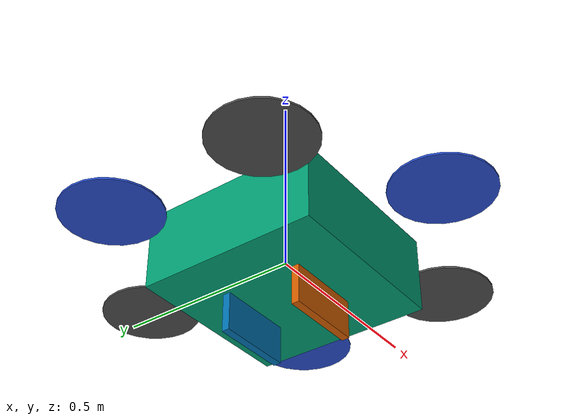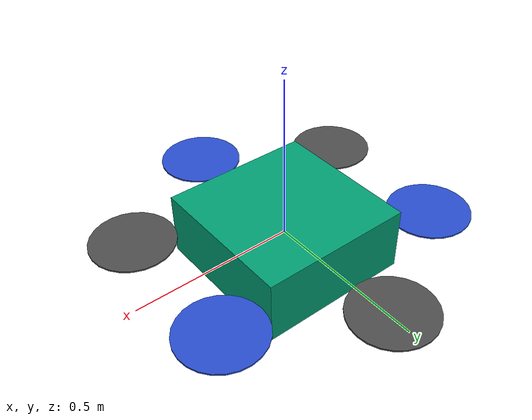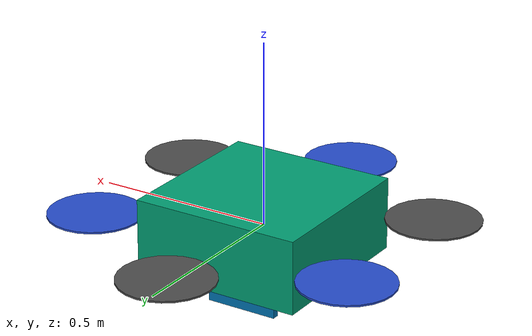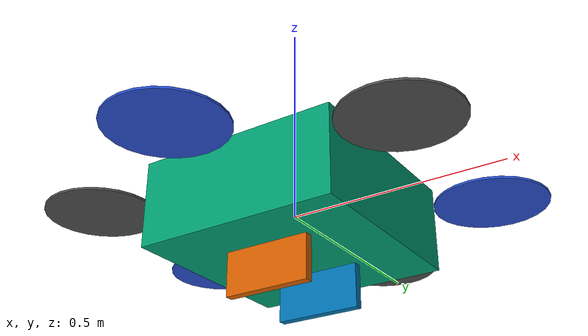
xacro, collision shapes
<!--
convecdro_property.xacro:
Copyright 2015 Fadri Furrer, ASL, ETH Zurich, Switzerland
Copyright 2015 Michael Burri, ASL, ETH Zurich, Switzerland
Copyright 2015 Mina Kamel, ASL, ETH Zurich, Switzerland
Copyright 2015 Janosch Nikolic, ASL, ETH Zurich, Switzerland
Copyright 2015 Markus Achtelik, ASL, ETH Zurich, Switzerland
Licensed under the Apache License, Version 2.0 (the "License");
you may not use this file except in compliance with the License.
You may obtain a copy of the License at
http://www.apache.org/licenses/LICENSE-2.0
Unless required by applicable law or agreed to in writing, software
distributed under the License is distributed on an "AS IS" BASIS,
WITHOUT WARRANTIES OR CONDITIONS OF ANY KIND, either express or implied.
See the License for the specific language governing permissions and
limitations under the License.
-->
<?xml version="1.0"?>

<robot name="convecdro" xmlns:xacro="http://ros.org/wiki/xacro">

  <!-- Included Properties -->
  <xacro:include filename="/home/soren/master_thesis/src/asv_wave_sim/asv_wave_sim_gazebo/models/convecdro/convecdro_property.xacro" />

  <!-- Included Mcros -->
  <xacro:include filename="/home/soren/master_thesis/src/asv_wave_sim/asv_wave_sim_gazebo/models/convecdro/convecdro_macro.xacro" />

<xacro:arg name='mavlink_addr' default='INADDR_ANY' />
<xacro:arg name='mavlink_udp_port' default='14560' />
<xacro:arg name='mavlink_tcp_port' default='4560' />
<xacro:arg name='serial_enabled' default='false' />
<xacro:arg name='serial_device' default='/dev/ttyACM0' />
<xacro:arg name='baudrate' default='921600' />
<xacro:arg name='qgc_addr' default='INADDR_ANY' />
<xacro:arg name='qgc_udp_port' default='14550' />
<xacro:arg name='sdk_addr' default='INADDR_ANY' />
<xacro:arg name='sdk_udp_port' default='14540' />
<xacro:arg name='hil_mode' default='0' />
<xacro:arg name='hil_state_level' default='0' />
<xacro:arg name='vehicle_is_tailsitter' default='0' />
<xacro:arg name='send_vision_estimation' default='1' />
<xacro:arg name='send_odometry' default='0' />
<xacro:arg name='enable_lockstep' default='0' />
<xacro:arg name='use_tcp' default='1' />

 <!-- Instantiate gps plugin. -->

  <!-- Instantiate magnetometer plugin. -->
  <xacro:magnetometer_plugin_macro
    namespace="${namespace}"
    pub_rate="20"
    noise_density="0.0004"
    random_walk="0.0000064"
    bias_correlation_time="600"
    mag_topic="/mag"
    >
  </xacro:magnetometer_plugin_macro>

  <!-- Instantiate barometer plugin. -->
  <xacro:barometer_plugin_macro
    namespace="${namespace}"
    pub_rate="10"
    baro_topic="/baro"
    >
  </xacro:barometer_plugin_macro>

<xacro:imu_plugin_macro
    namespace="${namespace}"
    imu_suffix=""
    parent_link="base_link"
    imu_topic="/imu"
    mass_imu_sensor="0.015"
    gyroscope_noise_density="0.0003394"
    gyroscopoe_random_walk="0.000038785"
    gyroscope_bias_correlation_time="1000.0"
    gyroscope_turn_on_bias_sigma="0.0087"
    accelerometer_noise_density="0.004"
    accelerometer_random_walk="0.006"
    accelerometer_bias_correlation_time="300.0"
    accelerometer_turn_on_bias_sigma="0.1960"
  >
    <inertia ixx="0.00001" ixy="0.0" ixz="0.0" iyy="0.00001" iyz="0.0" izz="0.00001" />
    <origin xyz="0 0 0" rpy="0 0 0" />
  </xacro:imu_plugin_macro>

  <!-- Instantiate mavlink telemetry interface. -->
  <xacro:mavlink_interface_macro
    namespace="${namespace}"
    imu_sub_topic="/imu"
    gps_sub_topic="/gps"
    mag_sub_topic="/mag"
    baro_sub_topic="/baro"
    mavlink_addr="INADDR_ANY"
    mavlink_udp_port="14560"
    mavlink_tcp_port ="4560"
    serial_enabled ="false"
    serial_device = "/dev/ttyACM0"
    baudrate = "921600"
    qgc_addr = "INADDR_ANY"
    qgc_udp_port ="14550"
    sdk_addr="INADDR_ANY"
    sdk_udp_port="14540"
    hil_mode="0"
    hil_state_level="0"
    vehicle_is_tailsitter="0"
    send_vision_estimation="1"
    send_odometry="0"
    enable_lockstep="0"
    use_tcp="1"
    >
  </xacro:mavlink_interface_macro>

  <!-- Instantiate multirotor_base_macro once -->
  <xacro:multirotor_base_macro
    robot_namespace="${namespace}"
    mass="${chassis_mass}"
    body_width="${chassis_width}"
    body_height="${chassis_height}"
    mesh_file="${chassis_mesh_file}"
    mesh_scale="${chassis_mesh_scale}"
    color="${color}"
    >
    <xacro:insert_block name="chassis_inertia" />
  </xacro:multirotor_base_macro>

  <!-- Instantiate hood macro once -->
  <xacro:convecdro_hood_macro
    robot_namespace="${namespace}"
    parent="base_link"
    mass="${hood_mass}"
    body_width="${hood_width}"
    body_height="${hood_height}"
    mesh_file="${hood_mesh_file}"
    mesh_scale="${hood_mesh_scale}"
    >
    <origin xyz="${hood_x} ${hood_y} ${hood_offset}" rpy="0 0 0" />
    <xacro:insert_block name="hood_inertia" />
  </xacro:convecdro_hood_macro>

  <!-- Instantiate left leg -->
  <xacro:convecdro_leg_macro
    robot_namespace="${namespace}"
    leg="left"
    parent="base_link"
    mass="${leg_mass}"
    body_width="${leg_width}"
    body_length="${leg_length}"
    body_height="${leg_height}"
    mesh_file="${leg_left_mesh_file}"
    mesh_scale="${leg_mesh_scale}"
    >
    <origin xyz="${leg_offset_x} ${leg_offset_y} ${leg_offset_z}" rpy="0 0 0" />
    <xacro:insert_block name="leg_inertia" />
  </xacro:convecdro_leg_macro>

  <!-- Instantiate right leg -->
  <xacro:convecdro_leg_macro
    robot_namespace="${namespace}"
    leg="right"
    parent="base_link"
    mass="${leg_mass}"
    body_width="${leg_width}"
    body_length="${leg_length}"
    body_height="${leg_height}"
    mesh_file="${leg_right_mesh_file}"
    mesh_scale="${leg_mesh_scale}"
    >
    <origin xyz="${leg_offset_x} -${leg_offset_y} ${leg_offset_z}" rpy="0 0 0" />
    <xacro:insert_block name="leg_inertia" />
  </xacro:convecdro_leg_macro>

  <!-- Rotor 0 (CW) -->
  <xacro:vertical_rotor
    robot_namespace="${namespace}"
    suffix="rotor_0"
    direction="cw"
    motor_constant="${motor_constant}"
    moment_constant="${moment_constant}"
    parent="base_link"
    rotor_mass="${rotor_mass}"
    radius_rotor="${radius_rotor}"
    time_constant_up="${time_constant_up}"
    time_constant_down="${time_constant_down}"
    max_rot_velocity="${max_rot_velocity}"
    motor_number="0"
    rotor_drag_coefficient="${rotor_drag_coefficient}"
    rolling_moment_coefficient="${rolling_moment_coefficient}"
    mesh="prop"
    mesh_scale="${mesh_scale_prop}"
    color="Blue">
    <origin xyz="${rotor0_x} ${rotor0_y} ${rotor_offset_top}" rpy="0 0 0" />
    <xacro:insert_block name="rotor_inertia" />
  </xacro:vertical_rotor>

  <!-- Rotor 1 (CCW) -->
  <xacro:vertical_rotor
    robot_namespace="${namespace}"
    suffix="rotor_1"
    direction="ccw"
    motor_constant="${motor_constant}"
    moment_constant="${moment_constant}"
    parent="base_link"
    rotor_mass="${rotor_mass}"
    radius_rotor="${radius_rotor}"
    time_constant_up="${time_constant_up}"
    time_constant_down="${time_constant_down}"
    max_rot_velocity="${max_rot_velocity}"
    motor_number="1"
    rotor_drag_coefficient="${rotor_drag_coefficient}"
    rolling_moment_coefficient="${rolling_moment_coefficient}"
    mesh="prop"
    mesh_scale="${mesh_scale_prop}"
    color="DarkGrey">
    <origin xyz="${rotor1_x} ${rotor1_y} ${rotor_offset_top}" rpy="0 0 0" />
    <xacro:insert_block name="rotor_inertia" />
  </xacro:vertical_rotor>

  <!-- Rotor 2 (CW) -->
  <xacro:vertical_rotor robot_namespace="${namespace}"
    suffix="rotor_2"
    direction="cw"
    motor_constant="${motor_constant}"
    moment_constant="${moment_constant}"
    parent="base_link"
    rotor_mass="${rotor_mass}"
    radius_rotor="${radius_rotor}"
    time_constant_up="${time_constant_up}"
    time_constant_down="${time_constant_down}"
    max_rot_velocity="${max_rot_velocity}"
    motor_number="2"
    rotor_drag_coefficient="${rotor_drag_coefficient}"
    rolling_moment_coefficient="${rolling_moment_coefficient}"
    mesh="prop"
    mesh_scale="${mesh_scale_prop}"
    color="Blue">
    <origin xyz="${rotor2_x} ${rotor2_y} ${rotor_offset_top}" rpy="0 0 0" />
    <xacro:insert_block name="rotor_inertia" />
  </xacro:vertical_rotor>

  <!-- Rotor 3 (CCW) -->
  <xacro:vertical_rotor robot_namespace="${namespace}"
    suffix="rotor_3"
    direction="ccw"
    motor_constant="${motor_constant}"
    moment_constant="${moment_constant}"
    parent="base_link"
    rotor_mass="${rotor_mass}"
    radius_rotor="${radius_rotor}"
    time_constant_up="${time_constant_up}"
    time_constant_down="${time_constant_down}"
    max_rot_velocity="${max_rot_velocity}"
    motor_number="3"
    rotor_drag_coefficient="${rotor_drag_coefficient}"
    rolling_moment_coefficient="${rolling_moment_coefficient}"
    mesh="prop"
    mesh_scale="${mesh_scale_prop}"
    color="DarkGrey">
    <origin xyz="${rotor3_x} ${rotor3_y} ${rotor_offset_top}" rpy="0 0 0" />
    <xacro:insert_block name="rotor_inertia" />
  </xacro:vertical_rotor>

  <!-- Rotor 4 (CCW) -->
  <xacro:vertical_rotor robot_namespace="${namespace}"
    suffix="rotor_4"
    direction="ccw"
    motor_constant="${motor_constant}"
    moment_constant="${moment_constant}"
    parent="base_link"
    rotor_mass="${rotor_mass}"
    radius_rotor="${radius_rotor}"
    time_constant_up="${time_constant_up}"
    time_constant_down="${time_constant_down}"
    max_rot_velocity="${max_rot_velocity}"
    motor_number="4"
    rotor_drag_coefficient="${rotor_drag_coefficient}"
    rolling_moment_coefficient="${rolling_moment_coefficient}"
    mesh="prop"
    mesh_scale="${mesh_scale_prop}"
    color="DarkGrey">
    <origin xyz="${rotor4_x} ${rotor4_y} ${rotor_offset_top}" rpy="0 0 0" />
    <xacro:insert_block name="rotor_inertia" />
  </xacro:vertical_rotor>

  <!-- Rotor 5 (CW) -->
  <xacro:vertical_rotor robot_namespace="${namespace}"
    suffix="rotor_5"
    direction="cw"
    motor_constant="${motor_constant}"
    moment_constant="${moment_constant}"
    parent="base_link"
    rotor_mass="${rotor_mass}"
    radius_rotor="${radius_rotor}"
    time_constant_up="${time_constant_up}"
    time_constant_down="${time_constant_down}"
    max_rot_velocity="${max_rot_velocity}"
    motor_number="5"
    rotor_drag_coefficient="${rotor_drag_coefficient}"
    rolling_moment_coefficient="${rolling_moment_coefficient}"
    mesh="prop"
    mesh_scale="${mesh_scale_prop}"
    color="Blue">
    <origin xyz="${rotor5_x} ${rotor5_y} ${rotor_offset_top}" rpy="0 0 0" />
    <xacro:insert_block name="rotor_inertia" />
  </xacro:vertical_rotor>

</robot>

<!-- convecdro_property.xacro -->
<robot xmlns:xacro="http://ros.org/wiki/xacro">
  <!-- Properties -->
  <xacro:property name="namespace" value="" />
  <xacro:property name="rotor_velocity_slowdown_sim" value="10" />

  <!-- ConVecDro chassis -->
  <xacro:property name="chassis_mesh_file" value="chassis.stl" />
  <xacro:property name="chassis_mesh_scale" value="1 1 1"/>
  <xacro:property name="chassis_mass" value="1.5" /> <!-- [kg] -->
  <xacro:property name="chassis_width" value="0.47" />
  <xacro:property name="chassis_height" value="0.20" />

  <xacro:property name="chassis_inertia">
    <inertia
    ixx="${1/12 * chassis_mass * (chassis_height * chassis_height + chassis_width * chassis_width)}"
    iyy="${1/12 * chassis_mass * (chassis_height * chassis_height + chassis_width * chassis_width)}"
    izz="${1/12 * chassis_mass * (chassis_width * chassis_width + chassis_width * chassis_width)}"
    ixy="0.0" ixz="0.0" iyz="0.0" /> <!-- [kg.m^2] [kg.m^2] [kg.m^2] [kg.m^2] [kg.m^2] [kg.m^2] -->
  </xacro:property>

  <!-- ConVecDro hood -->
  <xacro:property name="hood_mesh_file" value="hood.dae" />
  <xacro:property name="hood_mesh_scale" value="1.1 1.1 1.1"/>
  <xacro:property name="hood_mass" value="0.01" /> <!-- [kg] -->
  <xacro:property name="hood_width" value="0.25" />
  <xacro:property name="hood_length" value="0.25" />
  <xacro:property name="hood_height" value="0.02" />

  <xacro:property name="hood_x" value="0.0" />
  <xacro:property name="hood_y" value="0.0" />
  <xacro:property name="hood_offset" value="0.032" />

  <xacro:property name="hood_inertia">
    <inertia
    ixx="${1/12 * hood_mass * (hood_height * hood_height + hood_length * hood_length)}"
    iyy="${1/12 * hood_mass * (hood_width * hood_width + hood_length * hood_length)}"
    izz="${1/12 * hood_mass * (hood_width * hood_width + hood_height * hood_height)}"
    ixy="0.0" ixz="0.0" iyz="0.0" /> <!-- [kg.m^2] [kg.m^2] [kg.m^2] [kg.m^2] [kg.m^2] [kg.m^2] -->
  </xacro:property>

  <!-- ConVecDro left -->
  <xacro:property name="leg_mesh_scale" value="1 1 1"/>
  <xacro:property name="leg_mass" value="0.20" /> <!-- [kg] -->
  <xacro:property name="leg_width" value="0.20" />
  <xacro:property name="leg_length" value="0.02" />
  <xacro:property name="leg_height" value="0.20" />
  <xacro:property name="leg_offset_z" value="-${chassis_height/2}" />
  <xacro:property name="leg_offset_x" value="0.0" />
  <xacro:property name="leg_offset_y" value="0.1" />

  <xacro:property name="leg_left_mesh_file" value="leg1_remeshed_v3.stl" />
  <xacro:property name="leg_right_mesh_file" value="leg2_remeshed_v3.stl" />

  <xacro:property name="leg_inertia">
    <inertia
    ixx="${1/12 * leg_mass * (leg_height * leg_height + leg_length * leg_length)}"
    iyy="${1/12 * leg_mass * (leg_width * leg_width + leg_length * leg_length)}"
    izz="${1/12 * leg_mass * (leg_width * leg_width + leg_height * leg_height)}"
    ixy="0.0" ixz="0.0" iyz="0.0" /> <!-- [kg.m^2] [kg.m^2] [kg.m^2] [kg.m^2] [kg.m^2] [kg.m^2] -->
  </xacro:property>

  <!-- Rotor params -->
  <xacro:property name="rotor_mass" value="0.005" /> <!-- [kg] -->
  <xacro:property name="mesh_scale_prop" value="1 1 1"/>
  <xacro:property name="arm_length" value="0.44" />

  <xacro:property name="cos30" value="0.866025403784" />
  <xacro:property name="sin30" value="0.5" />

  <xacro:property name="cos90" value="0" />
  <xacro:property name="sin90" value="1" />

  <xacro:property name="cos150" value="-0.866025403784" />
  <xacro:property name="sin150" value="0.5" />

  <xacro:property name="cos210" value="-0.866025403784" />
  <xacro:property name="sin210" value="-0.5" />

  <xacro:property name="cos270" value="0" />
  <xacro:property name="sin270" value="-1" />

  <xacro:property name="cos330" value="0.866025403784" />
  <xacro:property name="sin330" value="-0.5" />

  <xacro:property name="rotor0_x" value="${cos270 * arm_length}" />
  <xacro:property name="rotor0_y" value="${sin270 * arm_length}" />

  <xacro:property name="rotor1_x" value="${cos90 * arm_length}" />
  <xacro:property name="rotor1_y" value="${sin90 * arm_length}" />

  <xacro:property name="rotor2_x" value="${cos30 * arm_length}" />
  <xacro:property name="rotor2_y" value="${sin30 * arm_length}" />

  <xacro:property name="rotor3_x" value="${cos210 * arm_length}" />
  <xacro:property name="rotor3_y" value="${sin210 * arm_length}" />

  <xacro:property name="rotor4_x" value="${cos330 * arm_length}" />
  <xacro:property name="rotor4_y" value="${sin330 * arm_length}" />

  <xacro:property name="rotor5_x" value="${cos150 * arm_length}" />
  <xacro:property name="rotor5_y" value="${sin150 * arm_length}" />

  <xacro:property name="radius_rotor" value="0.128" />
  <xacro:property name="rotor_offset_top" value="0.023" />

  <xacro:property name="motor_constant" value="8.54858e-06" /> <!-- [kg.m/s^2] -->
  <xacro:property name="moment_constant" value="0.06" />
  <xacro:property name="time_constant_up" value="0.0125" />
  <xacro:property name="time_constant_down" value="0.025" />
  <xacro:property name="max_rot_velocity" value="1100" /> <!-- [rad/s] -->
  <xacro:property name="sqrt2" value="1.4142135623730951" />
  <xacro:property name="rotor_drag_coefficient" value="8.06428e-04" />
  <xacro:property name="rolling_moment_coefficient" value="0.000001" />
  <xacro:property name="color" value="DarkGrey" />

  <!-- inertia of a single rotor, assuming it is a cuboid. Height=3mm, width=15mm -->
  <xacro:property name="rotor_inertia">
    <inertia
    ixx="${1/12 * rotor_mass * (0.015 * 0.015 + 0.003 * 0.003) * rotor_velocity_slowdown_sim}"
    iyy="${1/12 * rotor_mass * (4 * radius_rotor * radius_rotor + 0.003 * 0.003) * rotor_velocity_slowdown_sim}"
    izz="${1/12 * rotor_mass * (4 * radius_rotor * radius_rotor + 0.015 * 0.015) * rotor_velocity_slowdown_sim}"
    ixy="0.0" ixz="0.0"  iyz="0.0" /> <!-- [kg.m^2] [kg.m^2] [kg.m^2] [kg.m^2] [kg.m^2] [kg.m^2] -->
  </xacro:property>

</robot>

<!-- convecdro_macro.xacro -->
<robot xmlns:xacro="http://ros.org/wiki/xacro">
  <!-- Macro to add logging to a bag file. -->
  <!-- Main multirotor link -->
  <xacro:macro name="multirotor_base_macro"
    params="robot_namespace mass body_width body_height mesh_file mesh_scale color *inertia">
    <link name="base_link"></link>

    <joint name="base_joint" type="fixed">
      <origin xyz="0 0 0" rpy="0 0 0" />
      <parent link="base_link" />
      <child link="base_link_inertia" />
    </joint>

    <link name="base_link_inertia">
      <inertial>
        <mass value="${mass}" />  <!-- [kg] -->
        <origin xyz="0 0 0" />
        <xacro:insert_block name="inertia" />
      </inertial>

      <visual>
        <origin xyz="0 0 -0.1" rpy="0 0 0.5233333" />
        <geometry>
          <mesh filename="/home/soren/master_thesis/src/asv_wave_sim/asv_wave_sim_gazebo/models/convecdro/meshes/${mesh_file}"
            scale="${mesh_scale}" />
        </geometry>
      </visual>

      <collision>
        <origin xyz="0 0 0" rpy="0 0 0" />
        <geometry>
          <box size="${body_width} ${body_width} ${body_height}" />
        </geometry>
      </collision>
    </link>

    <!-- attach multirotor_base_plugin to the base_link -->
    <gazebo>
      <plugin filename="libgazebo_multirotor_base_plugin.so" name="rosbag">
        <robotNamespace>${robot_namespace}</robotNamespace>
        <linkName>base_link</linkName>
        <rotorVelocitySlowdownSim>${rotor_velocity_slowdown_sim}</rotorVelocitySlowdownSim>
      </plugin>
    </gazebo>

    <gazebo>
      <plugin name="gazebo_ros_control" filename="libgazebo_ros_control.so">
        <robotNamespace>${robot_namespace}</robotNamespace>
      </plugin>
    </gazebo>

    <gazebo reference="base_link">
      <material>Gazebo/${color}</material>
      <collision name='base_link_inertia_collision'>
        <surface>
          <contact>
            <ode>
              <min_depth>0.001</min_depth>
              <max_vel>0.0</max_vel>
            </ode>
          </contact>
          <friction>
            <ode/>
          </friction>
        </surface>
      </collision>
   </gazebo>
  </xacro:macro>

  <!-- ConVecDro hood macro -->
  <xacro:macro name="convecdro_hood_macro"
    params="robot_namespace parent mass body_width body_height mesh_file mesh_scale *origin *inertia">

    <joint name="convecdro_hood_joint" type="fixed">
      <xacro:insert_block name="origin" />
      <parent link="${parent}" />
      <child link="convecdro_hood_link" />
    </joint>

    <link name="convecdro_hood_link">
      <inertial>
        <mass value="${mass}" />  <!-- [kg] -->
        <origin xyz="0 0 0" />
        <xacro:insert_block name="inertia" />
      </inertial>

      <visual>
        <origin xyz="0 0 0" rpy="0 0 0" />
        <geometry>
          <mesh filename="/home/soren/master_thesis/src/asv_wave_sim/asv_wave_sim_gazebo/models/convecdro/meshes/${mesh_file}"
            scale="${mesh_scale}" />
        </geometry>
      </visual>

      <collision>
        <origin xyz="0 0 0" rpy="0 0 0" />
        <geometry>
          <box size="${body_width} ${body_width} ${body_height}" />
        </geometry>
      </collision>
    </link>
  </xacro:macro>

  <!-- ConVecDro leg macro -->
  <xacro:macro name="convecdro_leg_macro"
    params="robot_namespace leg parent mass body_width body_length body_height mesh_file mesh_scale *origin *inertia">

    <joint name="convecdro_leg_${leg}_joint" type="continuous">
      <xacro:insert_block name="origin" />
      <axis xyz="1 0 0" />
      <parent link="${parent}" />
      <child link="convecdro_leg_${leg}_link" />
      <limit effort="1000.0" lower="-0.48" upper="0.48" velocity="2.5" />
      <dynamics damping="0.0" friction="0.0" />
    </joint>

    <link name="convecdro_leg_${leg}_link">
      <inertial>
        <mass value="${mass}" />  <!-- [kg] -->
        <origin xyz="0 0 0" />
        <xacro:insert_block name="inertia" />
      </inertial>

      <visual>
        <origin xyz="0 0 0" rpy="0 0 0" />
        <geometry>
          <box size="${body_width} ${body_length} ${body_height}" />
        </geometry>
      </visual>

      <collision>
        <origin xyz="0 0 0" rpy="0 0 0" />
        <geometry>
          <box size="${body_width} ${body_length} ${body_height}" />
        </geometry>
        <surface>
          <friction>
            <ode>
              <mu>0.01</mu>
              <mu2>0.01</mu2>
            </ode>
          </friction>
        </surface>
      </collision>
    </link>

    <transmission name="trans_convecdro_leg_${leg}">
      <type>transmission_interface/SimpleTransmission</type>
      <joint name="convecdro_leg_${leg}_joint">
          <hardwareInterface>hardware_interface/EffortJointInterface</hardwareInterface>
      </joint>
      <actuator name="convecdro_leg_${leg}">
          <hardwareInterface>hardware_interface/EffortJointInterface</hardwareInterface>
          <mechanicalReduction>1</mechanicalReduction>
      </actuator>
    </transmission>
  </xacro:macro>

  <!-- Rotor joint and link -->
  <xacro:macro name="vertical_rotor"
    params="robot_namespace suffix direction motor_constant moment_constant parent rotor_mass radius_rotor time_constant_up time_constant_down max_rot_velocity motor_number rotor_drag_coefficient rolling_moment_coefficient color mesh mesh_scale *origin *inertia">
    <joint name="rotor_${motor_number}_joint" type="continuous">
      <xacro:insert_block name="origin" />
      <axis xyz="0 0 1" />
      <parent link="${parent}" />
      <child link="rotor_${motor_number}" />

    </joint>

    <link name="rotor_${motor_number}">
      <inertial>
        <mass value="${rotor_mass}" /> <!-- [kg] -->
        <xacro:insert_block name="inertia" />
      </inertial>
      <visual>
        <geometry>

          <mesh filename="/home/soren/master_thesis/src/asv_wave_sim/asv_wave_sim_gazebo/models/convecdro/meshes/${mesh}_${direction}.dae"
            scale="${mesh_scale}" />
        </geometry>
      </visual>
      <collision>
        <geometry>
          <cylinder length="0.005" radius="${radius_rotor}" />
        </geometry>
      </collision>
    </link>
    <gazebo>
      <plugin name="motor_model_${suffix}" filename="libgazebo_motor_model.so">
        <robotNamespace>${robot_namespace}</robotNamespace>
        <jointName>rotor_${motor_number}_joint</jointName>
        <linkName>rotor_${motor_number}</linkName>
        <turningDirection>${direction}</turningDirection>
        <timeConstantUp>${time_constant_up}</timeConstantUp>
        <timeConstantDown>${time_constant_down}</timeConstantDown>
        <maxRotVelocity>${max_rot_velocity}</maxRotVelocity>
        <motorConstant>${motor_constant}</motorConstant>
        <momentConstant>${moment_constant}</momentConstant>
        <commandSubTopic>/gazebo/command/motor_speed</commandSubTopic>
        <motorNumber>${motor_number}</motorNumber>
        <rotorDragCoefficient>${rotor_drag_coefficient}</rotorDragCoefficient>
        <rollingMomentCoefficient>${rolling_moment_coefficient}</rollingMomentCoefficient>
        <motorSpeedPubTopic>/motor_speed/${motor_number}</motorSpeedPubTopic>
        <rotorVelocitySlowdownSim>${rotor_velocity_slowdown_sim}</rotorVelocitySlowdownSim>
      </plugin>
    </gazebo>
    <gazebo reference="rotor_${motor_number}">
      <material>Gazebo/${color}</material>
    </gazebo>
  </xacro:macro>

  <xacro:macro name="box_inertial" params="x y z mass *origin">
    <inertial>
      <mass value="${mass}" />
      <xacro:insert_block name="origin" />
      <inertia ixx="${0.0833333 * mass * (y*y + z*z)}" ixy="0.0" ixz="0.0"
        iyy="${0.0833333 * mass * (x*x + z*z)}" iyz="0.0"
        izz="${0.0833333 * mass * (x*x + y*y)}" />
    </inertial>
  </xacro:macro>

<!-- Macro to add the controller interface. -->
  <xacro:macro name="controller_plugin_macro" params="namespace imu_sub_topic">
    <gazebo>
      <plugin name="controller_interface" filename="libgazebo_controller_interface.so">
        <robotNamespace>${namespace}</robotNamespace>
        <commandAttitudeThrustSubTopic>/command/attitude</commandAttitudeThrustSubTopic>
        <commandRateThrustSubTopic>/command/rate</commandRateThrustSubTopic>
        <commandMotorSpeedSubTopic>/command/motor_speed</commandMotorSpeedSubTopic>
        <imuSubTopic>/${imu_sub_topic}</imuSubTopic>
        <motorSpeedCommandPubTopic>/gazebo/command/motor_speed</motorSpeedCommandPubTopic>
      </plugin>
    </gazebo>
  </xacro:macro>

  <!-- Macro to add the gps_plugin. -->
  <xacro:macro name="gps_plugin_macro" params="namespace gps_noise">
    <gazebo>
      <plugin name="gps_plugin" filename="libgazebo_gps_plugin.so">
        <robotNamespace>${namespace}</robotNamespace>
        <gpsNoise>${gps_noise}</gpsNoise>
      </plugin>
    </gazebo>
  </xacro:macro>

  <!-- Macro to add the magnetometer_plugin. -->
  <xacro:macro name="magnetometer_plugin_macro" params="namespace pub_rate noise_density random_walk bias_correlation_time mag_topic">
    <gazebo>
      <plugin name="magnetometer_plugin" filename="libgazebo_magnetometer_plugin.so">
        <robotNamespace>${namespace}</robotNamespace>
        <pubRate>${pub_rate}</pubRate>
        <noiseDensity>${noise_density}</noiseDensity>
        <randomWalk>${random_walk}</randomWalk>
        <biasCorrelationTime>${bias_correlation_time}</biasCorrelationTime>
        <magTopic>${mag_topic}</magTopic>
      </plugin>
    </gazebo>
  </xacro:macro>

  <!-- Macro to add the barometer_plugin. -->
  <xacro:macro name="barometer_plugin_macro" params="namespace pub_rate baro_topic">
    <gazebo>
      <plugin name="barometer_plugin" filename="libgazebo_barometer_plugin.so">
        <robotNamespace>${namespace}</robotNamespace>
        <pubRate>${pub_rate}</pubRate>
        <baroTopic>${baro_topic}</baroTopic>
      </plugin>
    </gazebo>
  </xacro:macro>

<xacro:macro name="mavlink_interface_macro" params="namespace imu_sub_topic gps_sub_topic mag_sub_topic baro_sub_topic mavlink_addr mavlink_udp_port mavlink_tcp_port serial_enabled serial_device baudrate qgc_addr qgc_udp_port sdk_addr sdk_udp_port hil_mode hil_state_level vehicle_is_tailsitter send_vision_estimation send_odometry enable_lockstep use_tcp">
    <gazebo>
      <plugin name="mavlink_interface" filename="libgazebo_mavlink_interface.so">
        <robotNamespace>${namespace}</robotNamespace>
        <imuSubTopic>${imu_sub_topic}</imuSubTopic>
        <gpsSubTopic>${gps_sub_topic}</gpsSubTopic>
        <magSubTopic>${mag_sub_topic}</magSubTopic>
        <baroSubTopic>${baro_sub_topic}</baroSubTopic>
        <mavlink_addr>$(arg mavlink_addr)</mavlink_addr>
        <mavlink_udp_port>$(arg mavlink_udp_port)</mavlink_udp_port>
        <mavlink_tcp_port>$(arg mavlink_tcp_port)</mavlink_tcp_port>
        <serialEnabled>$(arg serial_enabled)</serialEnabled>
        <serialDevice>$(arg serial_device)</serialDevice>
        <baudRate>$(arg baudrate)</baudRate>
        <qgc_addr>$(arg qgc_addr)</qgc_addr>
        <qgc_udp_port>$(arg qgc_udp_port)</qgc_udp_port>
        <sdk_addr>$(arg sdk_addr)</sdk_addr>
        <sdk_udp_port>$(arg sdk_udp_port)</sdk_udp_port>
        <hil_mode>$(arg hil_mode)</hil_mode>
        <hil_state_level>$(arg hil_state_level)</hil_state_level>
        <vehicle_is_tailsitter>$(arg vehicle_is_tailsitter)</vehicle_is_tailsitter>
        <send_vision_estimation>$(arg send_vision_estimation)</send_vision_estimation>
        <send_odometry>$(arg send_odometry)</send_odometry>
        <enable_lockstep>$(arg enable_lockstep)</enable_lockstep>
        <use_tcp>$(arg use_tcp)</use_tcp>
        <motorSpeedCommandPubTopic>/gazebo/command/motor_speed</motorSpeedCommandPubTopic>
        <control_channels>
          <channel name="rotor0">
            <input_index>0</input_index>
            <input_offset>0</input_offset>
            <input_scaling>1000</input_scaling>
            <zero_position_disarmed>0</zero_position_disarmed>
            <zero_position_armed>100</zero_position_armed>
            <joint_control_type>velocity</joint_control_type>
          </channel>
          <channel name="rotor1">
            <input_index>1</input_index>
            <input_offset>0</input_offset>
            <input_scaling>1000</input_scaling>
            <zero_position_disarmed>0</zero_position_disarmed>
            <zero_position_armed>100</zero_position_armed>
            <joint_control_type>velocity</joint_control_type>
          </channel>
          <channel name="rotor2">
            <input_index>2</input_index>
            <input_offset>0</input_offset>
            <input_scaling>1000</input_scaling>
            <zero_position_disarmed>0</zero_position_disarmed>
            <zero_position_armed>100</zero_position_armed>
            <joint_control_type>velocity</joint_control_type>
          </channel>
          <channel name="rotor3">
            <input_index>3</input_index>
            <input_offset>0</input_offset>
            <input_scaling>1000</input_scaling>
            <zero_position_disarmed>0</zero_position_disarmed>
            <zero_position_armed>100</zero_position_armed>
            <joint_control_type>velocity</joint_control_type>
          </channel>
          <channel name="rotor4">
            <input_index>4</input_index>
            <input_offset>0</input_offset>
            <input_scaling>1000</input_scaling>
            <zero_position_disarmed>0</zero_position_disarmed>
            <zero_position_armed>100</zero_position_armed>
            <joint_control_type>velocity</joint_control_type>
          </channel>
          <channel name="rotor5">
            <input_index>5</input_index>
            <input_offset>0</input_offset>
            <input_scaling>1000</input_scaling>
            <zero_position_disarmed>0</zero_position_disarmed>
            <zero_position_armed>100</zero_position_armed>
            <joint_control_type>velocity</joint_control_type>
          </channel>
        </control_channels>
      </plugin>
    </gazebo>
  </xacro:macro>

<xacro:macro name="imu_plugin_macro"
    params="namespace imu_suffix parent_link imu_topic
      mass_imu_sensor gyroscope_noise_density gyroscopoe_random_walk
      gyroscope_bias_correlation_time gyroscope_turn_on_bias_sigma
      accelerometer_noise_density accelerometer_random_walk
      accelerometer_bias_correlation_time accelerometer_turn_on_bias_sigma
      *inertia *origin">
    <!-- IMU link -->
    <link name="${namespace}/imu${imu_suffix}_link">
      <inertial>
        <xacro:insert_block name="inertia" />
        <mass value="${mass_imu_sensor}" />  <!-- [kg] -->
        <origin xyz="0 0 0" rpy="0 0 0" />
      </inertial>
    </link>
    <!-- IMU joint -->
    <joint name="${namespace}/imu${imu_suffix}_joint" type="revolute">
      <xacro:insert_block name="origin" />
      <parent link="${parent_link}" />
      <child link="${namespace}/imu${imu_suffix}_link" />
      <limit upper="0" lower="0" effort="0" velocity="0" />
    </joint>
    <gazebo>
      <plugin filename="libgazebo_imu_plugin.so" name="rotors_gazebo_imu${imu_suffix}_plugin">
      <!-- A good description of the IMU parameters can be found in the kalibr documentation:
           https://github.com/ethz-asl/kalibr/wiki/IMU-Noise-Model-and-Intrinsics -->
        <robotNamespace>${namespace}</robotNamespace> <!-- (string, required): ros namespace in which the messages are published -->
        <linkName>${namespace}/imu${imu_suffix}_link</linkName> <!-- (string, required): name of the body which holds the IMU sensor -->
        <imuTopic>${imu_topic}</imuTopic> <!-- (string): name of the sensor output topic and prefix of service names (defaults to imu) -->
        <gyroscopeNoiseDensity>${gyroscope_noise_density}</gyroscopeNoiseDensity> <!-- Gyroscope noise density (two-sided spectrum) [rad/s/sqrt(Hz)] -->
        <gyroscopeRandomWalk>${gyroscopoe_random_walk}</gyroscopeRandomWalk> <!-- Gyroscope bias random walk [rad/s/s/sqrt(Hz)] -->
        <gyroscopeBiasCorrelationTime>${gyroscope_bias_correlation_time}</gyroscopeBiasCorrelationTime> <!-- Gyroscope bias correlation time constant [s] -->
        <gyroscopeTurnOnBiasSigma>${gyroscope_turn_on_bias_sigma}</gyroscopeTurnOnBiasSigma> <!-- Gyroscope turn on bias standard deviation [rad/s] -->
        <accelerometerNoiseDensity>${accelerometer_noise_density}</accelerometerNoiseDensity> <!-- Accelerometer noise density (two-sided spectrum) [m/s^2/sqrt(Hz)] -->
        <accelerometerRandomWalk>${accelerometer_random_walk}</accelerometerRandomWalk> <!-- Accelerometer bias random walk. [m/s^2/s/sqrt(Hz)] -->
        <accelerometerBiasCorrelationTime>${accelerometer_bias_correlation_time}</accelerometerBiasCorrelationTime> <!-- Accelerometer bias correlation time constant [s] -->
        <accelerometerTurnOnBiasSigma>${accelerometer_turn_on_bias_sigma}</accelerometerTurnOnBiasSigma> <!-- Accelerometer turn on bias standard deviation [m/s^2] -->
      </plugin>
    </gazebo>
  </xacro:macro>

</robot>
